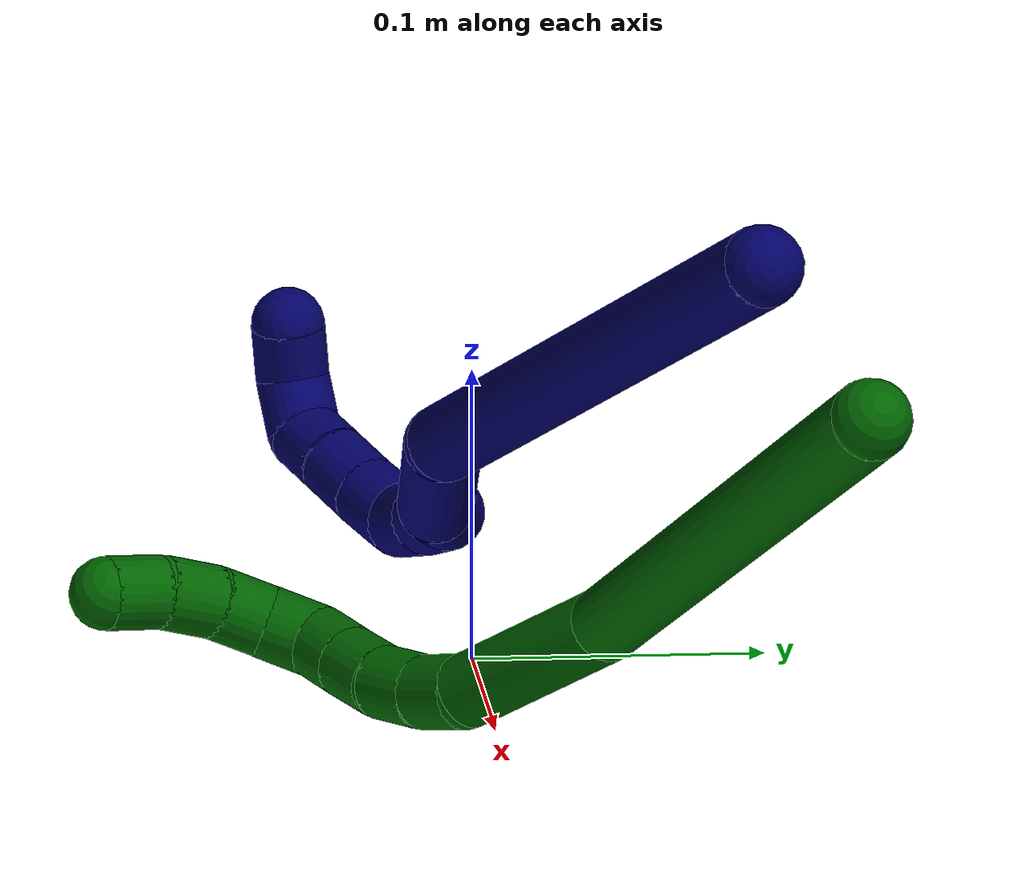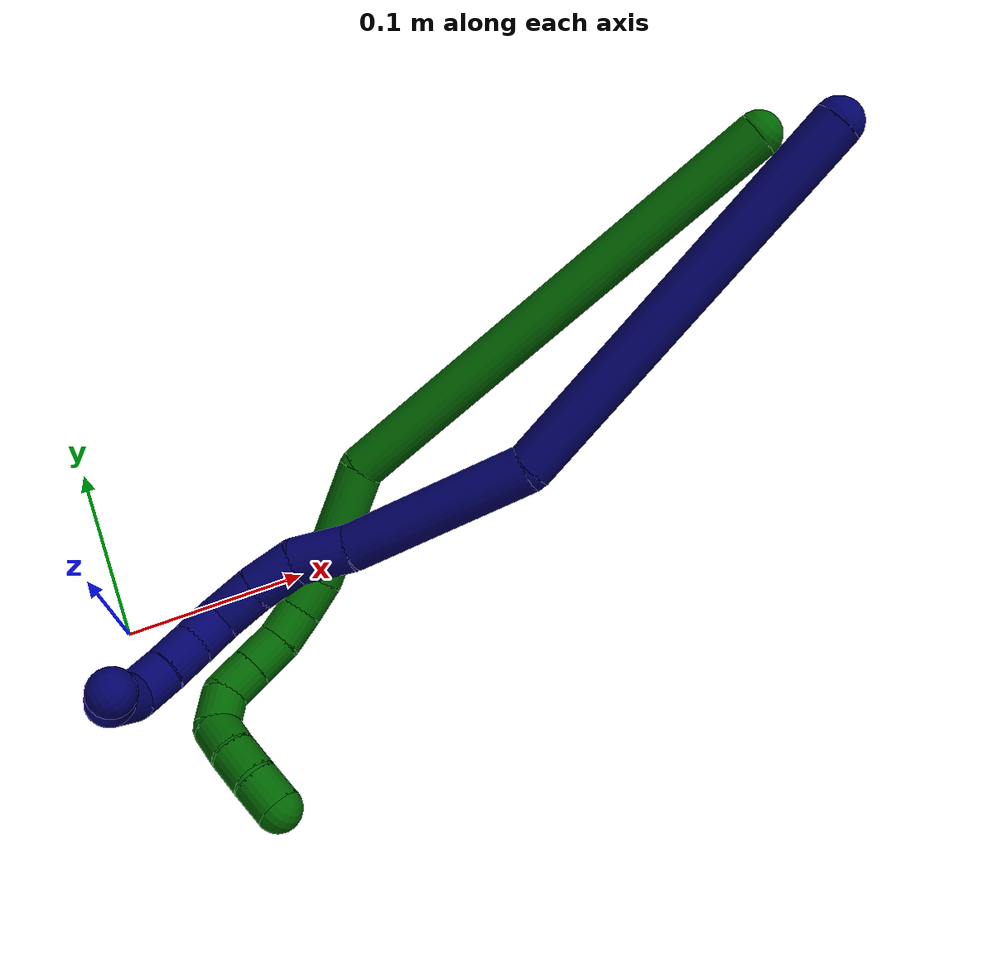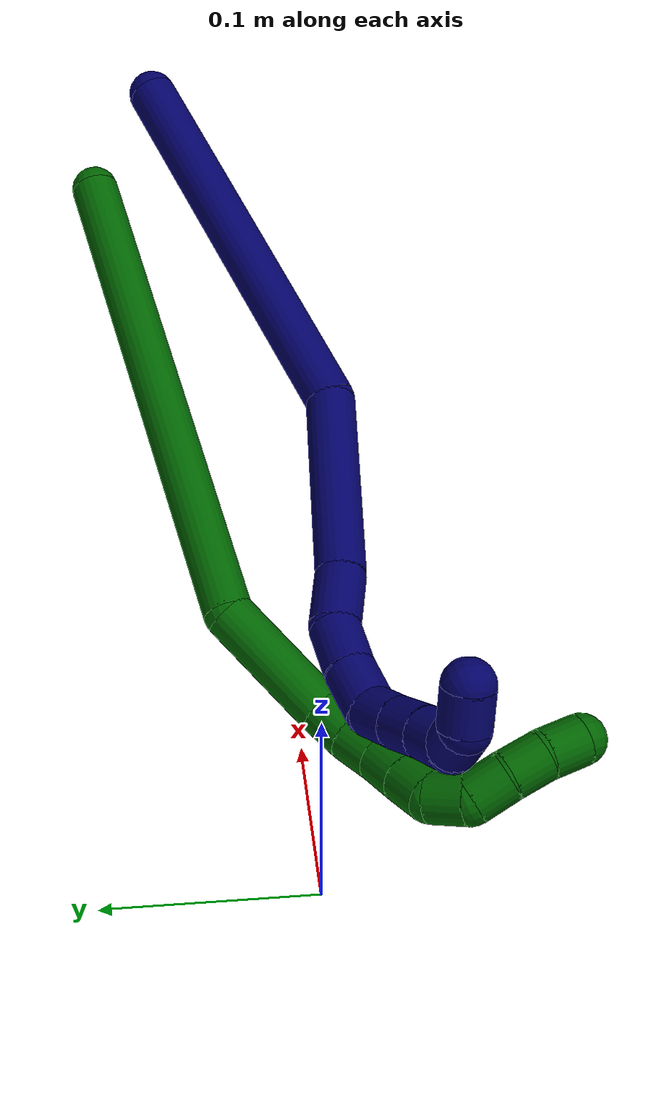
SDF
<sdf version="1.7">
 <world name="default">
  <model name="6">
   <static>0</static>
   <link name="6">
    <collision name="collision-cylinder-e_1_1_4">
     <pose>-0.025193 0.013192 -0.132549 -3.04239 -0.186925 2.16753</pose>
     <geometry><cylinder><radius>0.0125</radius><length>0.271132</length></cylinder></geometry>
     <surface>
      <friction><ode><mu>1.16</mu><mu2>1.16</mu2><slip1>0</slip1><slip2>0</slip2></ode></friction>
      <contact><ode><kp>1e+06</kp><kd>1</kd><max_vel>0</max_vel><min_depth>0.001</min_depth></ode></contact>
     </surface>
    </collision>
    <visual name="visual-cylinder-e_1_1_4">
     <pose>-0.025193 0.013192 -0.132549 -3.04239 -0.186925 2.16753</pose>
     <geometry><cylinder><radius>0.0125</radius><length>0.271132</length></cylinder></geometry>
     <material><ambient>0 0.392157 0.003922 1</ambient></material>
    </visual>
    <collision name="collision-cylinder-e_2_4_5">
     <pose>-0.053685 0.013146 -0.295529 2.73126 -0.099056 -0.467688</pose>
     <geometry><cylinder><radius>0.0125</radius><length>0.066696</length></cylinder></geometry>
     <surface>
      <friction><ode><mu>1.16</mu><mu2>1.16</mu2><slip1>0</slip1><slip2>0</slip2></ode></friction>
      <contact><ode><kp>1e+06</kp><kd>1</kd><max_vel>0</max_vel><min_depth>0.001</min_depth></ode></contact>
     </surface>
    </collision>
    <visual name="visual-cylinder-e_2_4_5">
     <pose>-0.053685 0.013146 -0.295529 2.73126 -0.099056 -0.467688</pose>
     <geometry><cylinder><radius>0.0125</radius><length>0.066696</length></cylinder></geometry>
     <material><ambient>0 0.392157 0.003922 1</ambient></material>
    </visual>
    <collision name="collision-cylinder-e_3_5_6">
     <pose>-0.061343 -0.003142 -0.334859 2.81135 -0.433932 -1.84699</pose>
     <geometry><cylinder><radius>0.0125</radius><length>0.020741</length></cylinder></geometry>
     <surface>
      <friction><ode><mu>1.16</mu><mu2>1.16</mu2><slip1>0</slip1><slip2>0</slip2></ode></friction>
      <contact><ode><kp>1e+06</kp><kd>1</kd><max_vel>0</max_vel><min_depth>0.001</min_depth></ode></contact>
     </surface>
    </collision>
    <visual name="visual-cylinder-e_3_5_6">
     <pose>-0.061343 -0.003142 -0.334859 2.81135 -0.433932 -1.84699</pose>
     <geometry><cylinder><radius>0.0125</radius><length>0.020741</length></cylinder></geometry>
     <material><ambient>0 0.392157 0.003922 1</ambient></material>
    </visual>
    <collision name="collision-cylinder-e_4_6_7">
     <pose>-0.071438 -0.00924 -0.351584 2.77036 -0.59925 -2.04926</pose>
     <geometry><cylinder><radius>0.0125</radius><length>0.020336</length></cylinder></geometry>
     <surface>
      <friction><ode><mu>1.16</mu><mu2>1.16</mu2><slip1>0</slip1><slip2>0</slip2></ode></friction>
      <contact><ode><kp>1e+06</kp><kd>1</kd><max_vel>0</max_vel><min_depth>0.001</min_depth></ode></contact>
     </surface>
    </collision>
    <visual name="visual-cylinder-e_4_6_7">
     <pose>-0.071438 -0.00924 -0.351584 2.77036 -0.59925 -2.04926</pose>
     <geometry><cylinder><radius>0.0125</radius><length>0.020336</length></cylinder></geometry>
     <material><ambient>0 0.392157 0.003922 1</ambient></material>
    </visual>
    <collision name="collision-cylinder-e_5_7_8">
     <pose>-0.084252 -0.013673 -0.366911 2.95868 -0.747964 -2.68245</pose>
     <geometry><cylinder><radius>0.0125</radius><length>0.020817</length></cylinder></geometry>
     <surface>
      <friction><ode><mu>1.16</mu><mu2>1.16</mu2><slip1>0</slip1><slip2>0</slip2></ode></friction>
      <contact><ode><kp>1e+06</kp><kd>1</kd><max_vel>0</max_vel><min_depth>0.001</min_depth></ode></contact>
     </surface>
    </collision>
    <visual name="visual-cylinder-e_5_7_8">
     <pose>-0.084252 -0.013673 -0.366911 2.95868 -0.747964 -2.68245</pose>
     <geometry><cylinder><radius>0.0125</radius><length>0.020817</length></cylinder></geometry>
     <material><ambient>0 0.392157 0.003922 1</ambient></material>
    </visual>
    <collision name="collision-cylinder-e_6_8_9">
     <pose>-0.098482 -0.016484 -0.381429 2.94145 -0.784938 -2.66566</pose>
     <geometry><cylinder><radius>0.0125</radius><length>0.020236</length></cylinder></geometry>
     <surface>
      <friction><ode><mu>1.16</mu><mu2>1.16</mu2><slip1>0</slip1><slip2>0</slip2></ode></friction>
      <contact><ode><kp>1e+06</kp><kd>1</kd><max_vel>0</max_vel><min_depth>0.001</min_depth></ode></contact>
     </surface>
    </collision>
    <visual name="visual-cylinder-e_6_8_9">
     <pose>-0.098482 -0.016484 -0.381429 2.94145 -0.784938 -2.66566</pose>
     <geometry><cylinder><radius>0.0125</radius><length>0.020236</length></cylinder></geometry>
     <material><ambient>0 0.392157 0.003922 1</ambient></material>
    </visual>
    <collision name="collision-cylinder-e_7_9_10">
     <pose>-0.112071 -0.024411 -0.392529 2.13164 -0.697579 -1.16377</pose>
     <geometry><cylinder><radius>0.0125</radius><length>0.020043</length></cylinder></geometry>
     <surface>
      <friction><ode><mu>1.16</mu><mu2>1.16</mu2><slip1>0</slip1><slip2>0</slip2></ode></friction>
      <contact><ode><kp>1e+06</kp><kd>1</kd><max_vel>0</max_vel><min_depth>0.001</min_depth></ode></contact>
     </surface>
    </collision>
    <visual name="visual-cylinder-e_7_9_10">
     <pose>-0.112071 -0.024411 -0.392529 2.13164 -0.697579 -1.16377</pose>
     <geometry><cylinder><radius>0.0125</radius><length>0.020043</length></cylinder></geometry>
     <material><ambient>0 0.392157 0.003922 1</ambient></material>
    </visual>
    <collision name="collision-cylinder-e_8_10_11">
     <pose>-0.122268 -0.039933 -0.394483 1.33865 -0.385398 -0.306324</pose>
     <geometry><cylinder><radius>0.0125</radius><length>0.02</length></cylinder></geometry>
     <surface>
      <friction><ode><mu>1.16</mu><mu2>1.16</mu2><slip1>0</slip1><slip2>0</slip2></ode></friction>
      <contact><ode><kp>1e+06</kp><kd>1</kd><max_vel>0</max_vel><min_depth>0.001</min_depth></ode></contact>
     </surface>
    </collision>
    <visual name="visual-cylinder-e_8_10_11">
     <pose>-0.122268 -0.039933 -0.394483 1.33865 -0.385398 -0.306324</pose>
     <geometry><cylinder><radius>0.0125</radius><length>0.02</length></cylinder></geometry>
     <material><ambient>0 0.392157 0.003922 1</ambient></material>
    </visual>
    <collision name="collision-cylinder-e_9_11_12">
     <pose>-0.128309 -0.058526 -0.39059 1.38899 -0.230283 -0.192067</pose>
     <geometry><cylinder><radius>0.0125</radius><length>0.02</length></cylinder></geometry>
     <surface>
      <friction><ode><mu>1.16</mu><mu2>1.16</mu2><slip1>0</slip1><slip2>0</slip2></ode></friction>
      <contact><ode><kp>1e+06</kp><kd>1</kd><max_vel>0</max_vel><min_depth>0.001</min_depth></ode></contact>
     </surface>
    </collision>
    <visual name="visual-cylinder-e_9_11_12">
     <pose>-0.128309 -0.058526 -0.39059 1.38899 -0.230283 -0.192067</pose>
     <geometry><cylinder><radius>0.0125</radius><length>0.02</length></cylinder></geometry>
     <material><ambient>0 0.392157 0.003922 1</ambient></material>
    </visual>
    <collision name="collision-cylinder-e_10_12_2">
     <pose>-0.131219 -0.078056 -0.388102 1.49777 -0.062743 -0.058323</pose>
     <geometry><cylinder><radius>0.0125</radius><length>0.02</length></cylinder></geometry>
     <surface>
      <friction><ode><mu>1.16</mu><mu2>1.16</mu2><slip1>0</slip1><slip2>0</slip2></ode></friction>
      <contact><ode><kp>1e+06</kp><kd>1</kd><max_vel>0</max_vel><min_depth>0.001</min_depth></ode></contact>
     </surface>
    </collision>
    <visual name="visual-cylinder-e_10_12_2">
     <pose>-0.131219 -0.078056 -0.388102 1.49777 -0.062743 -0.058323</pose>
     <geometry><cylinder><radius>0.0125</radius><length>0.02</length></cylinder></geometry>
     <material><ambient>0 0.392157 0.003922 1</ambient></material>
    </visual>
    <collision name="collision-sphere-2">
     <pose>-0.131846 -0.08801 -0.387374 0 -0 0</pose>
     <geometry><sphere><radius>0.0125</radius></sphere></geometry>
     <surface>
      <friction><ode><mu>1.16</mu><mu2>1.16</mu2><slip1>0</slip1><slip2>0</slip2></ode></friction>
      <contact><ode><kp>1e+06</kp><kd>1</kd><max_vel>0</max_vel><min_depth>0.001</min_depth></ode></contact>
     </surface>
    </collision>
    <visual name="visual-sphere-2">
     <pose>-0.131846 -0.08801 -0.387374 0 -0 0</pose>
     <geometry><sphere><radius>0.0125</radius></sphere></geometry>
     <material><ambient>0 0.392157 0.003922 1</ambient></material>
    </visual>
    <collision name="collision-sphere-12">
     <pose>-0.130592 -0.068102 -0.38883 0 -0 0</pose>
     <geometry><sphere><radius>0.0125</radius></sphere></geometry>
     <surface>
      <friction><ode><mu>1.16</mu><mu2>1.16</mu2><slip1>0</slip1><slip2>0</slip2></ode></friction>
      <contact><ode><kp>1e+06</kp><kd>1</kd><max_vel>0</max_vel><min_depth>0.001</min_depth></ode></contact>
     </surface>
    </collision>
    <visual name="visual-sphere-12">
     <pose>-0.130592 -0.068102 -0.38883 0 -0 0</pose>
     <geometry><sphere><radius>0.0125</radius></sphere></geometry>
     <material><ambient>0 0.392157 0.003922 1</ambient></material>
    </visual>
    <collision name="collision-sphere-11">
     <pose>-0.126027 -0.048951 -0.392351 0 -0 0</pose>
     <geometry><sphere><radius>0.0125</radius></sphere></geometry>
     <surface>
      <friction><ode><mu>1.16</mu><mu2>1.16</mu2><slip1>0</slip1><slip2>0</slip2></ode></friction>
      <contact><ode><kp>1e+06</kp><kd>1</kd><max_vel>0</max_vel><min_depth>0.001</min_depth></ode></contact>
     </surface>
    </collision>
    <visual name="visual-sphere-11">
     <pose>-0.126027 -0.048951 -0.392351 0 -0 0</pose>
     <geometry><sphere><radius>0.0125</radius></sphere></geometry>
     <material><ambient>0 0.392157 0.003922 1</ambient></material>
    </visual>
    <collision name="collision-sphere-10">
     <pose>-0.118508 -0.030915 -0.396615 0 -0 0</pose>
     <geometry><sphere><radius>0.0125</radius></sphere></geometry>
     <surface>
      <friction><ode><mu>1.16</mu><mu2>1.16</mu2><slip1>0</slip1><slip2>0</slip2></ode></friction>
      <contact><ode><kp>1e+06</kp><kd>1</kd><max_vel>0</max_vel><min_depth>0.001</min_depth></ode></contact>
     </surface>
    </collision>
    <visual name="visual-sphere-10">
     <pose>-0.118508 -0.030915 -0.396615 0 -0 0</pose>
     <geometry><sphere><radius>0.0125</radius></sphere></geometry>
     <material><ambient>0 0.392157 0.003922 1</ambient></material>
    </visual>
    <collision name="collision-sphere-9">
     <pose>-0.105633 -0.017907 -0.388444 0 -0 0</pose>
     <geometry><sphere><radius>0.0125</radius></sphere></geometry>
     <surface>
      <friction><ode><mu>1.16</mu><mu2>1.16</mu2><slip1>0</slip1><slip2>0</slip2></ode></friction>
      <contact><ode><kp>1e+06</kp><kd>1</kd><max_vel>0</max_vel><min_depth>0.001</min_depth></ode></contact>
     </surface>
    </collision>
    <visual name="visual-sphere-9">
     <pose>-0.105633 -0.017907 -0.388444 0 -0 0</pose>
     <geometry><sphere><radius>0.0125</radius></sphere></geometry>
     <material><ambient>0 0.392157 0.003922 1</ambient></material>
    </visual>
    <collision name="collision-sphere-4">
     <pose>-0.050387 0.026384 -0.265099 0 -0 0</pose>
     <geometry><sphere><radius>0.0125</radius></sphere></geometry>
     <surface>
      <friction><ode><mu>1.16</mu><mu2>1.16</mu2><slip1>0</slip1><slip2>0</slip2></ode></friction>
      <contact><ode><kp>1e+06</kp><kd>1</kd><max_vel>0</max_vel><min_depth>0.001</min_depth></ode></contact>
     </surface>
    </collision>
    <visual name="visual-sphere-4">
     <pose>-0.050387 0.026384 -0.265099 0 -0 0</pose>
     <geometry><sphere><radius>0.0125</radius></sphere></geometry>
     <material><ambient>0 0.392157 0.003922 1</ambient></material>
    </visual>
    <collision name="collision-sphere-1">
     <geometry><sphere><radius>0.0125</radius></sphere></geometry>
     <surface>
      <friction><ode><mu>1.16</mu><mu2>1.16</mu2><slip1>0</slip1><slip2>0</slip2></ode></friction>
      <contact><ode><kp>1e+06</kp><kd>1</kd><max_vel>0</max_vel><min_depth>0.001</min_depth></ode></contact>
     </surface>
    </collision>
    <visual name="visual-sphere-1">
     <geometry><sphere><radius>0.0125</radius></sphere></geometry>
     <material><ambient>0 0.392157 0.003922 1</ambient></material>
    </visual>
    <collision name="collision-sphere-8">
     <pose>-0.091331 -0.015061 -0.374414 0 -0 0</pose>
     <geometry><sphere><radius>0.0125</radius></sphere></geometry>
     <surface>
      <friction><ode><mu>1.16</mu><mu2>1.16</mu2><slip1>0</slip1><slip2>0</slip2></ode></friction>
      <contact><ode><kp>1e+06</kp><kd>1</kd><max_vel>0</max_vel><min_depth>0.001</min_depth></ode></contact>
     </surface>
    </collision>
    <visual name="visual-sphere-8">
     <pose>-0.091331 -0.015061 -0.374414 0 -0 0</pose>
     <geometry><sphere><radius>0.0125</radius></sphere></geometry>
     <material><ambient>0 0.392157 0.003922 1</ambient></material>
    </visual>
    <collision name="collision-sphere-5">
     <pose>-0.056983 -9.1e-05 -0.325958 0 -0 0</pose>
     <geometry><sphere><radius>0.0125</radius></sphere></geometry>
     <surface>
      <friction><ode><mu>1.16</mu><mu2>1.16</mu2><slip1>0</slip1><slip2>0</slip2></ode></friction>
      <contact><ode><kp>1e+06</kp><kd>1</kd><max_vel>0</max_vel><min_depth>0.001</min_depth></ode></contact>
     </surface>
    </collision>
    <visual name="visual-sphere-5">
     <pose>-0.056983 -9.1e-05 -0.325958 0 -0 0</pose>
     <geometry><sphere><radius>0.0125</radius></sphere></geometry>
     <material><ambient>0 0.392157 0.003922 1</ambient></material>
    </visual>
    <collision name="collision-sphere-6">
     <pose>-0.065703 -0.006194 -0.34376 0 -0 0</pose>
     <geometry><sphere><radius>0.0125</radius></sphere></geometry>
     <surface>
      <friction><ode><mu>1.16</mu><mu2>1.16</mu2><slip1>0</slip1><slip2>0</slip2></ode></friction>
      <contact><ode><kp>1e+06</kp><kd>1</kd><max_vel>0</max_vel><min_depth>0.001</min_depth></ode></contact>
     </surface>
    </collision>
    <visual name="visual-sphere-6">
     <pose>-0.065703 -0.006194 -0.34376 0 -0 0</pose>
     <geometry><sphere><radius>0.0125</radius></sphere></geometry>
     <material><ambient>0 0.392157 0.003922 1</ambient></material>
    </visual>
    <collision name="collision-sphere-7">
     <pose>-0.077173 -0.012285 -0.359409 0 -0 0</pose>
     <geometry><sphere><radius>0.0125</radius></sphere></geometry>
     <surface>
      <friction><ode><mu>1.16</mu><mu2>1.16</mu2><slip1>0</slip1><slip2>0</slip2></ode></friction>
      <contact><ode><kp>1e+06</kp><kd>1</kd><max_vel>0</max_vel><min_depth>0.001</min_depth></ode></contact>
     </surface>
    </collision>
    <visual name="visual-sphere-7">
     <pose>-0.077173 -0.012285 -0.359409 0 -0 0</pose>
     <geometry><sphere><radius>0.0125</radius></sphere></geometry>
     <material><ambient>0 0.392157 0.003922 1</ambient></material>
    </visual>
    <inertial>
     <pose>-0.05353 -0.000874 -0.232863 0 -0 0</pose>
     <mass>0.5</mass>
     <inertia>
      <ixx>0.000434</ixx>
      <ixy>0</ixy>
      <ixz>0</ixz>
      <iyy>0.002278</iyy>
      <iyz>0</iyz>
      <izz>0.000143</izz>
     </inertia>
    </inertial>
   </link>
   <pose>0.387512 0.087531 0.16517 0.031423 0.928351 0.374304</pose>
  </model>
  <model name="7">
   <static>0</static>
   <link name="7">
    <collision name="collision-cylinder-e_1_1_4">
     <pose>0.028194 -0.02907 -0.10068 2.8605 0.262819 1.50281</pose>
     <geometry><cylinder><radius>0.0125</radius><length>0.217038</length></cylinder></geometry>
     <surface>
      <friction><ode><mu>1.16</mu><mu2>1.16</mu2><slip1>0</slip1><slip2>0</slip2></ode></friction>
      <contact><ode><kp>1e+06</kp><kd>1</kd><max_vel>0</max_vel><min_depth>0.001</min_depth></ode></contact>
     </surface>
    </collision>
    <visual name="visual-cylinder-e_1_1_4">
     <pose>0.028194 -0.02907 -0.10068 2.8605 0.262819 1.50281</pose>
     <geometry><cylinder><radius>0.0125</radius><length>0.217038</length></cylinder></geometry>
     <material><ambient>0.003922 0 0.403922 1</ambient></material>
    </visual>
    <collision name="collision-cylinder-e_2_4_5">
     <pose>0.070827 -0.050477 -0.249447 -2.98357 0.288285 -2.14286</pose>
     <geometry><cylinder><radius>0.0125</radius><length>0.101578</length></cylinder></geometry>
     <surface>
      <friction><ode><mu>1.16</mu><mu2>1.16</mu2><slip1>0</slip1><slip2>0</slip2></ode></friction>
      <contact><ode><kp>1e+06</kp><kd>1</kd><max_vel>0</max_vel><min_depth>0.001</min_depth></ode></contact>
     </surface>
    </collision>
    <visual name="visual-cylinder-e_2_4_5">
     <pose>0.070827 -0.050477 -0.249447 -2.98357 0.288285 -2.14286</pose>
     <geometry><cylinder><radius>0.0125</radius><length>0.101578</length></cylinder></geometry>
     <material><ambient>0.003922 0 0.403922 1</ambient></material>
    </visual>
    <collision name="collision-cylinder-e_3_5_6">
     <pose>0.088306 -0.038029 -0.311917 -2.82044 0.19788 -1.09964</pose>
     <geometry><cylinder><radius>0.0125</radius><length>0.030921</length></cylinder></geometry>
     <surface>
      <friction><ode><mu>1.16</mu><mu2>1.16</mu2><slip1>0</slip1><slip2>0</slip2></ode></friction>
      <contact><ode><kp>1e+06</kp><kd>1</kd><max_vel>0</max_vel><min_depth>0.001</min_depth></ode></contact>
     </surface>
    </collision>
    <visual name="visual-cylinder-e_3_5_6">
     <pose>0.088306 -0.038029 -0.311917 -2.82044 0.19788 -1.09964</pose>
     <geometry><cylinder><radius>0.0125</radius><length>0.030921</length></cylinder></geometry>
     <material><ambient>0.003922 0 0.403922 1</ambient></material>
    </visual>
    <collision name="collision-cylinder-e_4_6_7">
     <pose>0.092983 -0.033923 -0.338835 3.08747 0.129678 2.3516</pose>
     <geometry><cylinder><radius>0.0125</radius><length>0.025318</length></cylinder></geometry>
     <surface>
      <friction><ode><mu>1.16</mu><mu2>1.16</mu2><slip1>0</slip1><slip2>0</slip2></ode></friction>
      <contact><ode><kp>1e+06</kp><kd>1</kd><max_vel>0</max_vel><min_depth>0.001</min_depth></ode></contact>
     </surface>
    </collision>
    <visual name="visual-cylinder-e_4_6_7">
     <pose>0.092983 -0.033923 -0.338835 3.08747 0.129678 2.3516</pose>
     <geometry><cylinder><radius>0.0125</radius><length>0.025318</length></cylinder></geometry>
     <material><ambient>0.003922 0 0.403922 1</ambient></material>
    </visual>
    <collision name="collision-cylinder-e_5_7_8">
     <pose>0.095565 -0.03659 -0.36335 2.97717 0.077663 0.881196</pose>
     <geometry><cylinder><radius>0.0125</radius><length>0.024363</length></cylinder></geometry>
     <surface>
      <friction><ode><mu>1.16</mu><mu2>1.16</mu2><slip1>0</slip1><slip2>0</slip2></ode></friction>
      <contact><ode><kp>1e+06</kp><kd>1</kd><max_vel>0</max_vel><min_depth>0.001</min_depth></ode></contact>
     </surface>
    </collision>
    <visual name="visual-cylinder-e_5_7_8">
     <pose>0.095565 -0.03659 -0.36335 2.97717 0.077663 0.881196</pose>
     <geometry><cylinder><radius>0.0125</radius><length>0.024363</length></cylinder></geometry>
     <material><ambient>0.003922 0 0.403922 1</ambient></material>
    </visual>
    <collision name="collision-cylinder-e_6_8_9">
     <pose>0.091821 -0.041861 -0.383869 2.77447 -0.473664 -1.83027</pose>
     <geometry><cylinder><radius>0.0125</radius><length>0.020559</length></cylinder></geometry>
     <surface>
      <friction><ode><mu>1.16</mu><mu2>1.16</mu2><slip1>0</slip1><slip2>0</slip2></ode></friction>
      <contact><ode><kp>1e+06</kp><kd>1</kd><max_vel>0</max_vel><min_depth>0.001</min_depth></ode></contact>
     </surface>
    </collision>
    <visual name="visual-cylinder-e_6_8_9">
     <pose>0.091821 -0.041861 -0.383869 2.77447 -0.473664 -1.83027</pose>
     <geometry><cylinder><radius>0.0125</radius><length>0.020559</length></cylinder></geometry>
     <material><ambient>0.003922 0 0.403922 1</ambient></material>
    </visual>
    <collision name="collision-cylinder-e_7_9_10">
     <pose>0.081991 -0.048343 -0.400491 2.76489 -0.534071 -1.92451</pose>
     <geometry><cylinder><radius>0.0125</radius><length>0.0202</length></cylinder></geometry>
     <surface>
      <friction><ode><mu>1.16</mu><mu2>1.16</mu2><slip1>0</slip1><slip2>0</slip2></ode></friction>
      <contact><ode><kp>1e+06</kp><kd>1</kd><max_vel>0</max_vel><min_depth>0.001</min_depth></ode></contact>
     </surface>
    </collision>
    <visual name="visual-cylinder-e_7_9_10">
     <pose>0.081991 -0.048343 -0.400491 2.76489 -0.534071 -1.92451</pose>
     <geometry><cylinder><radius>0.0125</radius><length>0.0202</length></cylinder></geometry>
     <material><ambient>0.003922 0 0.403922 1</ambient></material>
    </visual>
    <collision name="collision-cylinder-e_8_10_11">
     <pose>0.072313 -0.054262 -0.417067 2.83145 -0.470577 -1.98589</pose>
     <geometry><cylinder><radius>0.0125</radius><length>0.020011</length></cylinder></geometry>
     <surface>
      <friction><ode><mu>1.16</mu><mu2>1.16</mu2><slip1>0</slip1><slip2>0</slip2></ode></friction>
      <contact><ode><kp>1e+06</kp><kd>1</kd><max_vel>0</max_vel><min_depth>0.001</min_depth></ode></contact>
     </surface>
    </collision>
    <visual name="visual-cylinder-e_8_10_11">
     <pose>0.072313 -0.054262 -0.417067 2.83145 -0.470577 -1.98589</pose>
     <geometry><cylinder><radius>0.0125</radius><length>0.020011</length></cylinder></geometry>
     <material><ambient>0.003922 0 0.403922 1</ambient></material>
    </visual>
    <collision name="collision-cylinder-e_9_11_12">
     <pose>0.058378 -0.057001 -0.428992 3.13667 -1.22062 -3.13456</pose>
     <geometry><cylinder><radius>0.0125</radius><length>0.020011</length></cylinder></geometry>
     <surface>
      <friction><ode><mu>1.16</mu><mu2>1.16</mu2><slip1>0</slip1><slip2>0</slip2></ode></friction>
      <contact><ode><kp>1e+06</kp><kd>1</kd><max_vel>0</max_vel><min_depth>0.001</min_depth></ode></contact>
     </surface>
    </collision>
    <visual name="visual-cylinder-e_9_11_12">
     <pose>0.058378 -0.057001 -0.428992 3.13667 -1.22062 -3.13456</pose>
     <geometry><cylinder><radius>0.0125</radius><length>0.020011</length></cylinder></geometry>
     <material><ambient>0.003922 0 0.403922 1</ambient></material>
    </visual>
    <collision name="collision-cylinder-e_10_12_2">
     <pose>0.039605 -0.057228 -0.428947 0.060356 -1.21497 -0.041965</pose>
     <geometry><cylinder><radius>0.0125</radius><length>0.020001</length></cylinder></geometry>
     <surface>
      <friction><ode><mu>1.16</mu><mu2>1.16</mu2><slip1>0</slip1><slip2>0</slip2></ode></friction>
      <contact><ode><kp>1e+06</kp><kd>1</kd><max_vel>0</max_vel><min_depth>0.001</min_depth></ode></contact>
     </surface>
    </collision>
    <visual name="visual-cylinder-e_10_12_2">
     <pose>0.039605 -0.057228 -0.428947 0.060356 -1.21497 -0.041965</pose>
     <geometry><cylinder><radius>0.0125</radius><length>0.020001</length></cylinder></geometry>
     <material><ambient>0.003922 0 0.403922 1</ambient></material>
    </visual>
    <collision name="collision-sphere-2">
     <pose>0.030231 -0.057438 -0.42547 0 -0 0</pose>
     <geometry><sphere><radius>0.0125</radius></sphere></geometry>
     <surface>
      <friction><ode><mu>1.16</mu><mu2>1.16</mu2><slip1>0</slip1><slip2>0</slip2></ode></friction>
      <contact><ode><kp>1e+06</kp><kd>1</kd><max_vel>0</max_vel><min_depth>0.001</min_depth></ode></contact>
     </surface>
    </collision>
    <visual name="visual-sphere-2">
     <pose>0.030231 -0.057438 -0.42547 0 -0 0</pose>
     <geometry><sphere><radius>0.0125</radius></sphere></geometry>
     <material><ambient>0.003922 0 0.403922 1</ambient></material>
    </visual>
    <collision name="collision-sphere-12">
     <pose>0.04898 -0.057018 -0.432425 0 -0 0</pose>
     <geometry><sphere><radius>0.0125</radius></sphere></geometry>
     <surface>
      <friction><ode><mu>1.16</mu><mu2>1.16</mu2><slip1>0</slip1><slip2>0</slip2></ode></friction>
      <contact><ode><kp>1e+06</kp><kd>1</kd><max_vel>0</max_vel><min_depth>0.001</min_depth></ode></contact>
     </surface>
    </collision>
    <visual name="visual-sphere-12">
     <pose>0.04898 -0.057018 -0.432425 0 -0 0</pose>
     <geometry><sphere><radius>0.0125</radius></sphere></geometry>
     <material><ambient>0.003922 0 0.403922 1</ambient></material>
    </visual>
    <collision name="collision-sphere-11">
     <pose>0.067776 -0.056984 -0.42556 0 -0 0</pose>
     <geometry><sphere><radius>0.0125</radius></sphere></geometry>
     <surface>
      <friction><ode><mu>1.16</mu><mu2>1.16</mu2><slip1>0</slip1><slip2>0</slip2></ode></friction>
      <contact><ode><kp>1e+06</kp><kd>1</kd><max_vel>0</max_vel><min_depth>0.001</min_depth></ode></contact>
     </surface>
    </collision>
    <visual name="visual-sphere-11">
     <pose>0.067776 -0.056984 -0.42556 0 -0 0</pose>
     <geometry><sphere><radius>0.0125</radius></sphere></geometry>
     <material><ambient>0.003922 0 0.403922 1</ambient></material>
    </visual>
    <collision name="collision-sphere-10">
     <pose>0.07685 -0.051541 -0.408575 0 -0 0</pose>
     <geometry><sphere><radius>0.0125</radius></sphere></geometry>
     <surface>
      <friction><ode><mu>1.16</mu><mu2>1.16</mu2><slip1>0</slip1><slip2>0</slip2></ode></friction>
      <contact><ode><kp>1e+06</kp><kd>1</kd><max_vel>0</max_vel><min_depth>0.001</min_depth></ode></contact>
     </surface>
    </collision>
    <visual name="visual-sphere-10">
     <pose>0.07685 -0.051541 -0.408575 0 -0 0</pose>
     <geometry><sphere><radius>0.0125</radius></sphere></geometry>
     <material><ambient>0.003922 0 0.403922 1</ambient></material>
    </visual>
    <collision name="collision-sphere-9">
     <pose>0.087132 -0.045145 -0.392407 0 -0 0</pose>
     <geometry><sphere><radius>0.0125</radius></sphere></geometry>
     <surface>
      <friction><ode><mu>1.16</mu><mu2>1.16</mu2><slip1>0</slip1><slip2>0</slip2></ode></friction>
      <contact><ode><kp>1e+06</kp><kd>1</kd><max_vel>0</max_vel><min_depth>0.001</min_depth></ode></contact>
     </surface>
    </collision>
    <visual name="visual-sphere-9">
     <pose>0.087132 -0.045145 -0.392407 0 -0 0</pose>
     <geometry><sphere><radius>0.0125</radius></sphere></geometry>
     <material><ambient>0.003922 0 0.403922 1</ambient></material>
    </visual>
    <collision name="collision-sphere-4">
     <pose>0.056387 -0.058139 -0.20136 0 -0 0</pose>
     <geometry><sphere><radius>0.0125</radius></sphere></geometry>
     <surface>
      <friction><ode><mu>1.16</mu><mu2>1.16</mu2><slip1>0</slip1><slip2>0</slip2></ode></friction>
      <contact><ode><kp>1e+06</kp><kd>1</kd><max_vel>0</max_vel><min_depth>0.001</min_depth></ode></contact>
     </surface>
    </collision>
    <visual name="visual-sphere-4">
     <pose>0.056387 -0.058139 -0.20136 0 -0 0</pose>
     <geometry><sphere><radius>0.0125</radius></sphere></geometry>
     <material><ambient>0.003922 0 0.403922 1</ambient></material>
    </visual>
    <collision name="collision-sphere-1">
     <geometry><sphere><radius>0.0125</radius></sphere></geometry>
     <surface>
      <friction><ode><mu>1.16</mu><mu2>1.16</mu2><slip1>0</slip1><slip2>0</slip2></ode></friction>
      <contact><ode><kp>1e+06</kp><kd>1</kd><max_vel>0</max_vel><min_depth>0.001</min_depth></ode></contact>
     </surface>
    </collision>
    <visual name="visual-sphere-1">
     <geometry><sphere><radius>0.0125</radius></sphere></geometry>
     <material><ambient>0.003922 0 0.403922 1</ambient></material>
    </visual>
    <collision name="collision-sphere-8">
     <pose>0.09651 -0.038578 -0.375331 0 -0 0</pose>
     <geometry><sphere><radius>0.0125</radius></sphere></geometry>
     <surface>
      <friction><ode><mu>1.16</mu><mu2>1.16</mu2><slip1>0</slip1><slip2>0</slip2></ode></friction>
      <contact><ode><kp>1e+06</kp><kd>1</kd><max_vel>0</max_vel><min_depth>0.001</min_depth></ode></contact>
     </surface>
    </collision>
    <visual name="visual-sphere-8">
     <pose>0.09651 -0.038578 -0.375331 0 -0 0</pose>
     <geometry><sphere><radius>0.0125</radius></sphere></geometry>
     <material><ambient>0.003922 0 0.403922 1</ambient></material>
    </visual>
    <collision name="collision-sphere-5">
     <pose>0.085267 -0.042814 -0.297533 0 -0 0</pose>
     <geometry><sphere><radius>0.0125</radius></sphere></geometry>
     <surface>
      <friction><ode><mu>1.16</mu><mu2>1.16</mu2><slip1>0</slip1><slip2>0</slip2></ode></friction>
      <contact><ode><kp>1e+06</kp><kd>1</kd><max_vel>0</max_vel><min_depth>0.001</min_depth></ode></contact>
     </surface>
    </collision>
    <visual name="visual-sphere-5">
     <pose>0.085267 -0.042814 -0.297533 0 -0 0</pose>
     <geometry><sphere><radius>0.0125</radius></sphere></geometry>
     <material><ambient>0.003922 0 0.403922 1</ambient></material>
    </visual>
    <collision name="collision-sphere-6">
     <pose>0.091346 -0.033244 -0.326301 0 -0 0</pose>
     <geometry><sphere><radius>0.0125</radius></sphere></geometry>
     <surface>
      <friction><ode><mu>1.16</mu><mu2>1.16</mu2><slip1>0</slip1><slip2>0</slip2></ode></friction>
      <contact><ode><kp>1e+06</kp><kd>1</kd><max_vel>0</max_vel><min_depth>0.001</min_depth></ode></contact>
     </surface>
    </collision>
    <visual name="visual-sphere-6">
     <pose>0.091346 -0.033244 -0.326301 0 -0 0</pose>
     <geometry><sphere><radius>0.0125</radius></sphere></geometry>
     <material><ambient>0.003922 0 0.403922 1</ambient></material>
    </visual>
    <collision name="collision-sphere-7">
     <pose>0.09462 -0.034602 -0.351369 0 -0 0</pose>
     <geometry><sphere><radius>0.0125</radius></sphere></geometry>
     <surface>
      <friction><ode><mu>1.16</mu><mu2>1.16</mu2><slip1>0</slip1><slip2>0</slip2></ode></friction>
      <contact><ode><kp>1e+06</kp><kd>1</kd><max_vel>0</max_vel><min_depth>0.001</min_depth></ode></contact>
     </surface>
    </collision>
    <visual name="visual-sphere-7">
     <pose>0.09462 -0.034602 -0.351369 0 -0 0</pose>
     <geometry><sphere><radius>0.0125</radius></sphere></geometry>
     <material><ambient>0.003922 0 0.403922 1</ambient></material>
    </visual>
    <inertial>
     <pose>0.055356 -0.039142 -0.231514 0 -0 0</pose>
     <mass>0.5</mass>
     <inertia>
      <ixx>0.000763</ixx>
      <ixy>0</ixy>
      <ixz>0</ixz>
      <iyy>0.000809</iyy>
      <iyz>0</iyz>
      <izz>-6.2e-05</izz>
     </inertia>
    </inertial>
   </link>
   <pose>0.4017 0.05343 0.214455 0.623737 1.39067 0.781775</pose>
  </model>
 </world>
</sdf>
